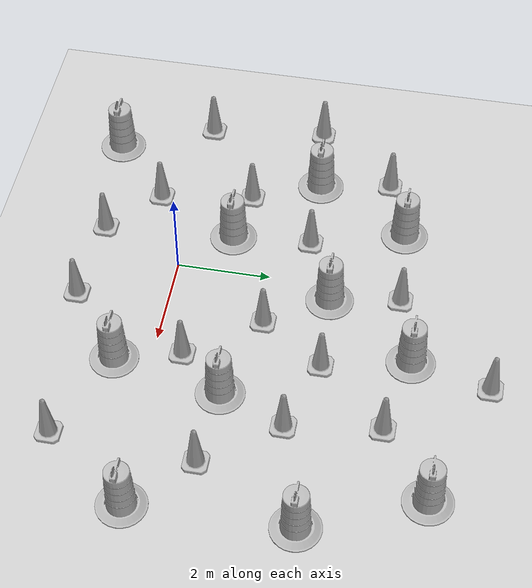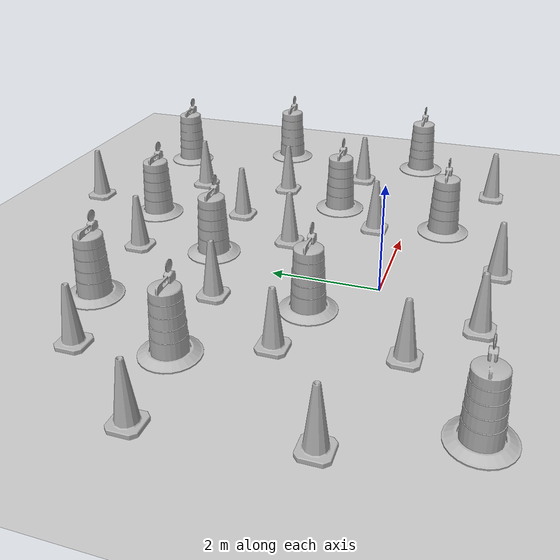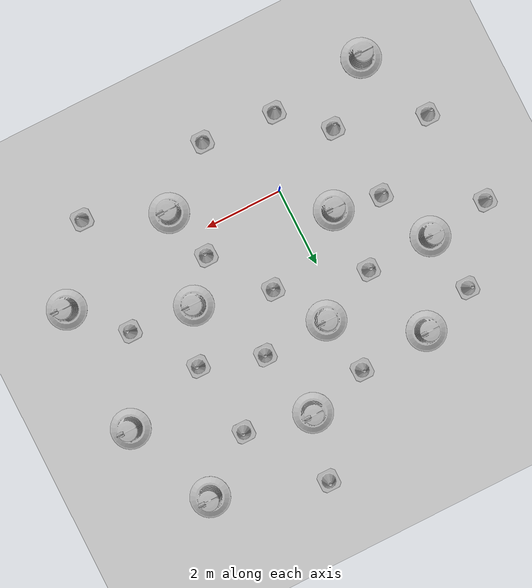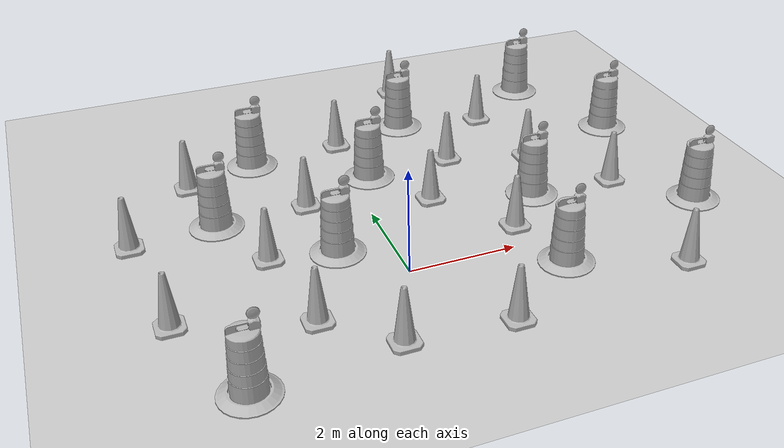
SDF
<sdf version="1.7">
 <world name="default">
  <light name="sun" type="directional">
   <pose>0 0 10 0 -0 0</pose>
   <diffuse>0.8 0.8 0.8 1</diffuse>
   <specular>0.2 0.2 0.2 1</specular>
   <attenuation>
    <range>1000</range>
    <constant>0.9</constant>
    <linear>0.01</linear>
    <quadratic>0.001</quadratic>
   </attenuation>
   <direction>-0.5 0.1 -0.9</direction>
   <spot><inner_angle>0</inner_angle><outer_angle>0</outer_angle><falloff>0</falloff></spot>
  </light>
  <model name="ground_plane">
   <static>1</static>
   <link name="link">
    <collision name="collision">
     <geometry><plane><normal>0 0 1</normal><size>100 100</size></plane></geometry>
     <surface>
      <contact><collide_bitmask>65535</collide_bitmask></contact>
      <friction><ode><mu>100</mu><mu2>50</mu2></ode></friction>
     </surface>
    </collision>
    <visual name="visual">
     <cast_shadows>0</cast_shadows>
     <geometry><plane><normal>0 0 1</normal><size>100 100</size></plane></geometry>
     <material>
      <script><uri>file://media/materials/scripts/gazebo.material</uri><name>Gazebo/Grey</name></script>
     </material>
    </visual>
   </link>
  </model>
  <gravity>0 0 -9.8</gravity>
  <magnetic_field>6e-06 2.3e-05 -4.2e-05</magnetic_field>
  <atmosphere type="adiabatic"/>
  <physics type="ode">
   <max_step_size>0.001</max_step_size>
   <real_time_factor>1</real_time_factor>
   <real_time_update_rate>1000</real_time_update_rate>
  </physics>
  <scene><ambient>0.4 0.4 0.4 1</ambient><background>0.7 0.7 0.7 1</background><shadows>1</shadows></scene>
  <audio><device>default</device></audio>
  <spherical_coordinates>
   <surface_model>EARTH_WGS84</surface_model>
   <latitude_deg>0</latitude_deg>
   <longitude_deg>0</longitude_deg>
   <elevation>0</elevation>
   <heading_deg>0</heading_deg>
  </spherical_coordinates>
  <model name="Construction Cone">
   <link name="link">
    <collision name="collision">
     <geometry>
      <mesh><scale>10 10 10</scale><uri>model://construction_cone/meshes/construction_cone.dae</uri></mesh>
     </geometry>
    </collision>
    <visual name="visual">
     <geometry>
      <mesh><scale>10 10 10</scale><uri>model://construction_cone/meshes/construction_cone.dae</uri></mesh>
     </geometry>
    </visual>
    <inertial>
     <inertia><ixx>1</ixx><ixy>0</ixy><ixz>0</ixz><iyy>1</iyy><iyz>0</iyz><izz>1</izz></inertia>
     <mass>1</mass>
    </inertial>
   </link>
   <pose>1.22897 2.08297 -0 -0 -0 -0</pose>
  </model>
  <model name="Construction Cone_clone">
   <link name="link">
    <collision name="collision">
     <geometry>
      <mesh><scale>10 10 10</scale><uri>model://construction_cone/meshes/construction_cone.dae</uri></mesh>
     </geometry>
    </collision>
    <visual name="visual">
     <geometry>
      <mesh><scale>10 10 10</scale><uri>model://construction_cone/meshes/construction_cone.dae</uri></mesh>
     </geometry>
    </visual>
    <inertial>
     <inertia><ixx>1</ixx><ixy>0</ixy><ixz>0</ixz><iyy>1</iyy><iyz>0</iyz><izz>1</izz></inertia>
     <mass>1</mass>
    </inertial>
   </link>
   <pose>2.12778 3.43331 -0 0 -0 0</pose>
  </model>
  <model name="Construction Cone_clone_0">
   <link name="link">
    <collision name="collision">
     <geometry>
      <mesh><scale>10 10 10</scale><uri>model://construction_cone/meshes/construction_cone.dae</uri></mesh>
     </geometry>
    </collision>
    <visual name="visual">
     <geometry>
      <mesh><scale>10 10 10</scale><uri>model://construction_cone/meshes/construction_cone.dae</uri></mesh>
     </geometry>
    </visual>
    <inertial>
     <inertia><ixx>1</ixx><ixy>0</ixy><ixz>0</ixz><iyy>1</iyy><iyz>0</iyz><izz>1</izz></inertia>
     <mass>1</mass>
    </inertial>
   </link>
   <pose>3.71535 2.94023 -1e-05 0 -0 0</pose>
  </model>
  <model name="Construction Cone_clone_1">
   <link name="link">
    <collision name="collision">
     <geometry>
      <mesh><scale>10 10 10</scale><uri>model://construction_cone/meshes/construction_cone.dae</uri></mesh>
     </geometry>
    </collision>
    <visual name="visual">
     <geometry>
      <mesh><scale>10 10 10</scale><uri>model://construction_cone/meshes/construction_cone.dae</uri></mesh>
     </geometry>
    </visual>
    <inertial>
     <inertia><ixx>1</ixx><ixy>0</ixy><ixz>0</ixz><iyy>1</iyy><iyz>0</iyz><izz>1</izz></inertia>
     <mass>1</mass>
    </inertial>
   </link>
   <pose>3.44447 4.87742 -1e-05 -0 -0 -0</pose>
  </model>
  <model name="Construction Cone_clone_2">
   <link name="link">
    <collision name="collision">
     <geometry>
      <mesh><scale>10 10 10</scale><uri>model://construction_cone/meshes/construction_cone.dae</uri></mesh>
     </geometry>
    </collision>
    <visual name="visual">
     <geometry>
      <mesh><scale>10 10 10</scale><uri>model://construction_cone/meshes/construction_cone.dae</uri></mesh>
     </geometry>
    </visual>
    <inertial>
     <inertia><ixx>1</ixx><ixy>0</ixy><ixz>0</ixz><iyy>1</iyy><iyz>0</iyz><izz>1</izz></inertia>
     <mass>1</mass>
    </inertial>
   </link>
   <pose>-1.87477 -0.785117 -0 0 -0 0</pose>
  </model>
  <model name="Construction Cone_clone_3">
   <link name="link">
    <collision name="collision">
     <geometry>
      <mesh><scale>10 10 10</scale><uri>model://construction_cone/meshes/construction_cone.dae</uri></mesh>
     </geometry>
    </collision>
    <visual name="visual">
     <geometry>
      <mesh><scale>10 10 10</scale><uri>model://construction_cone/meshes/construction_cone.dae</uri></mesh>
     </geometry>
    </visual>
    <inertial>
     <inertia><ixx>1</ixx><ixy>0</ixy><ixz>0</ixz><iyy>1</iyy><iyz>0</iyz><izz>1</izz></inertia>
     <mass>1</mass>
    </inertial>
   </link>
   <pose>-0.762306 -1.79241 -0 0 -0 0</pose>
  </model>
  <model name="Construction Cone_clone_4">
   <link name="link">
    <collision name="collision">
     <geometry>
      <mesh><scale>10 10 10</scale><uri>model://construction_cone/meshes/construction_cone.dae</uri></mesh>
     </geometry>
    </collision>
    <visual name="visual">
     <geometry>
      <mesh><scale>10 10 10</scale><uri>model://construction_cone/meshes/construction_cone.dae</uri></mesh>
     </geometry>
    </visual>
    <inertial>
     <inertia><ixx>1</ixx><ixy>0</ixy><ixz>0</ixz><iyy>1</iyy><iyz>0</iyz><izz>1</izz></inertia>
     <mass>1</mass>
    </inertial>
   </link>
   <pose>-2.19034 1.21403 -0 0 -0 0</pose>
  </model>
  <model name="Construction Cone_clone_5">
   <link name="link">
    <collision name="collision">
     <geometry>
      <mesh><scale>10 10 10</scale><uri>model://construction_cone/meshes/construction_cone.dae</uri></mesh>
     </geometry>
    </collision>
    <visual name="visual">
     <geometry>
      <mesh><scale>10 10 10</scale><uri>model://construction_cone/meshes/construction_cone.dae</uri></mesh>
     </geometry>
    </visual>
    <inertial>
     <inertia><ixx>1</ixx><ixy>0</ixy><ixz>0</ixz><iyy>1</iyy><iyz>0</iyz><izz>1</izz></inertia>
     <mass>1</mass>
    </inertial>
   </link>
   <pose>-1.08174 2.70843 -0 1e-06 -0 0</pose>
  </model>
  <model name="Construction Cone_clone_6">
   <link name="link">
    <collision name="collision">
     <geometry>
      <mesh><scale>10 10 10</scale><uri>model://construction_cone/meshes/construction_cone.dae</uri></mesh>
     </geometry>
    </collision>
    <visual name="visual">
     <geometry>
      <mesh><scale>10 10 10</scale><uri>model://construction_cone/meshes/construction_cone.dae</uri></mesh>
     </geometry>
    </visual>
    <inertial>
     <inertia><ixx>1</ixx><ixy>0</ixy><ixz>0</ixz><iyy>1</iyy><iyz>0</iyz><izz>1</izz></inertia>
     <mass>1</mass>
    </inertial>
   </link>
   <pose>1.14176 -1.93552 -0 0 -0 0</pose>
  </model>
  <model name="Construction Cone_clone_7">
   <link name="link">
    <collision name="collision">
     <geometry>
      <mesh><scale>10 10 10</scale><uri>model://construction_cone/meshes/construction_cone.dae</uri></mesh>
     </geometry>
    </collision>
    <visual name="visual">
     <geometry>
      <mesh><scale>10 10 10</scale><uri>model://construction_cone/meshes/construction_cone.dae</uri></mesh>
     </geometry>
    </visual>
    <inertial>
     <inertia><ixx>1</ixx><ixy>0</ixy><ixz>0</ixz><iyy>1</iyy><iyz>0</iyz><izz>1</izz></inertia>
     <mass>1</mass>
    </inertial>
   </link>
   <pose>2.31937 0.601422 0 -0 -0 -0</pose>
  </model>
  <model name="Construction Cone_clone_8">
   <link name="link">
    <collision name="collision">
     <geometry>
      <mesh><scale>10 10 10</scale><uri>model://construction_cone/meshes/construction_cone.dae</uri></mesh>
     </geometry>
    </collision>
    <visual name="visual">
     <geometry>
      <mesh><scale>10 10 10</scale><uri>model://construction_cone/meshes/construction_cone.dae</uri></mesh>
     </geometry>
    </visual>
    <inertial>
     <inertia><ixx>1</ixx><ixy>0</ixy><ixz>0</ixz><iyy>1</iyy><iyz>0</iyz><izz>1</izz></inertia>
     <mass>1</mass>
    </inertial>
   </link>
   <pose>4.81727 1.42038 -0 0 -0 0</pose>
  </model>
  <model name="Construction Cone_clone_9">
   <link name="link">
    <collision name="collision">
     <geometry>
      <mesh><scale>10 10 10</scale><uri>model://construction_cone/meshes/construction_cone.dae</uri></mesh>
     </geometry>
    </collision>
    <visual name="visual">
     <geometry>
      <mesh><scale>10 10 10</scale><uri>model://construction_cone/meshes/construction_cone.dae</uri></mesh>
     </geometry>
    </visual>
    <inertial>
     <inertia><ixx>1</ixx><ixy>0</ixy><ixz>0</ixz><iyy>1</iyy><iyz>0</iyz><izz>1</izz></inertia>
     <mass>1</mass>
    </inertial>
   </link>
   <pose>4.64472 -1.56597 1e-06 -3e-06 1e-06 0</pose>
  </model>
  <model name="Construction Cone_clone_10">
   <link name="link">
    <collision name="collision">
     <geometry>
      <mesh><scale>10 10 10</scale><uri>model://construction_cone/meshes/construction_cone.dae</uri></mesh>
     </geometry>
    </collision>
    <visual name="visual">
     <geometry>
      <mesh><scale>10 10 10</scale><uri>model://construction_cone/meshes/construction_cone.dae</uri></mesh>
     </geometry>
    </visual>
    <inertial>
     <inertia><ixx>1</ixx><ixy>0</ixy><ixz>0</ixz><iyy>1</iyy><iyz>0</iyz><izz>1</izz></inertia>
     <mass>1</mass>
    </inertial>
   </link>
   <pose>0.171995 4.82629 -1e-06 3e-06 -1e-06 0</pose>
  </model>
  <model name="Construction Cone_clone_11">
   <link name="link">
    <collision name="collision">
     <geometry>
      <mesh><scale>10 10 10</scale><uri>model://construction_cone/meshes/construction_cone.dae</uri></mesh>
     </geometry>
    </collision>
    <visual name="visual">
     <geometry>
      <mesh><scale>10 10 10</scale><uri>model://construction_cone/meshes/construction_cone.dae</uri></mesh>
     </geometry>
    </visual>
    <inertial>
     <inertia><ixx>1</ixx><ixy>0</ixy><ixz>0</ixz><iyy>1</iyy><iyz>0</iyz><izz>1</izz></inertia>
     <mass>1</mass>
    </inertial>
   </link>
   <pose>2.12292 6.87969 -0 0 -0 0</pose>
  </model>
  <model name="Construction Cone_clone_12">
   <link name="link">
    <collision name="collision">
     <geometry>
      <mesh><scale>10 10 10</scale><uri>model://construction_cone/meshes/construction_cone.dae</uri></mesh>
     </geometry>
    </collision>
    <visual name="visual">
     <geometry>
      <mesh><scale>10 10 10</scale><uri>model://construction_cone/meshes/construction_cone.dae</uri></mesh>
     </geometry>
    </visual>
    <inertial>
     <inertia><ixx>1</ixx><ixy>0</ixy><ixz>0</ixz><iyy>1</iyy><iyz>0</iyz><izz>1</izz></inertia>
     <mass>1</mass>
    </inertial>
   </link>
   <pose>-3.05405 4.20277 -0 0 -1e-06 0</pose>
  </model>
  <model name="Construction Cone_clone_13">
   <link name="link">
    <collision name="collision">
     <geometry>
      <mesh><scale>10 10 10</scale><uri>model://construction_cone/meshes/construction_cone.dae</uri></mesh>
     </geometry>
    </collision>
    <visual name="visual">
     <geometry>
      <mesh><scale>10 10 10</scale><uri>model://construction_cone/meshes/construction_cone.dae</uri></mesh>
     </geometry>
    </visual>
    <inertial>
     <inertia><ixx>1</ixx><ixy>0</ixy><ixz>0</ixz><iyy>1</iyy><iyz>0</iyz><izz>1</izz></inertia>
     <mass>1</mass>
    </inertial>
   </link>
   <pose>-4.10738 -0.048019 -0 0 -0 0</pose>
  </model>
  <model name="Construction Cone_clone_14">
   <link name="link">
    <collision name="collision">
     <geometry>
      <mesh><scale>10 10 10</scale><uri>model://construction_cone/meshes/construction_cone.dae</uri></mesh>
     </geometry>
    </collision>
    <visual name="visual">
     <geometry>
      <mesh><scale>10 10 10</scale><uri>model://construction_cone/meshes/construction_cone.dae</uri></mesh>
     </geometry>
    </visual>
    <inertial>
     <inertia><ixx>1</ixx><ixy>0</ixy><ixz>0</ixz><iyy>1</iyy><iyz>0</iyz><izz>1</izz></inertia>
     <mass>1</mass>
    </inertial>
   </link>
   <pose>-4.41011 2.47854 -0 0 -1e-06 0</pose>
  </model>
  <model name="Construction Barrel">
   <link name="link">
    <inertial>
     <pose>0 0 0.4 0 -0 0</pose>
     <mass>500</mass>
     <inertia><ixx>51.2096</ixx><iyy>51.2096</iyy><izz>25</izz><ixy>0</ixy><ixz>0</ixz><iyz>0</iyz></inertia>
    </inertial>
    <collision name="collision">
     <geometry><mesh><uri>model://construction_barrel/meshes/construction_barrel.dae</uri></mesh></geometry>
    </collision>
    <visual name="visual">
     <geometry><mesh><uri>model://construction_barrel/meshes/construction_barrel.dae</uri></mesh></geometry>
    </visual>
   </link>
   <pose>1.72089 5.2243 -2e-06 7e-06 -4e-06 -2e-05</pose>
  </model>
  <model name="Construction Barrel_clone">
   <link name="link">
    <inertial>
     <pose>0 0 0.4 0 -0 0</pose>
     <mass>500</mass>
     <inertia><ixx>51.2096</ixx><iyy>51.2096</iyy><izz>25</izz><ixy>0</ixy><ixz>0</ixz><iyz>0</iyz></inertia>
    </inertial>
    <collision name="collision">
     <geometry><mesh><uri>model://construction_barrel/meshes/construction_barrel.dae</uri></mesh></geometry>
    </collision>
    <visual name="visual">
     <geometry><mesh><uri>model://construction_barrel/meshes/construction_barrel.dae</uri></mesh></geometry>
    </visual>
   </link>
   <pose>4.9013 5.92661 -0 0 -0 -1.8e-05</pose>
  </model>
  <model name="Construction Barrel_clone_0">
   <link name="link">
    <inertial>
     <pose>0 0 0.4 0 -0 0</pose>
     <mass>500</mass>
     <inertia><ixx>51.2096</ixx><iyy>51.2096</iyy><izz>25</izz><ixy>0</ixy><ixz>0</ixz><iyz>0</iyz></inertia>
    </inertial>
    <collision name="collision">
     <geometry><mesh><uri>model://construction_barrel/meshes/construction_barrel.dae</uri></mesh></geometry>
    </collision>
    <visual name="visual">
     <geometry><mesh><uri>model://construction_barrel/meshes/construction_barrel.dae</uri></mesh></geometry>
    </visual>
   </link>
   <pose>5.88714 3.55536 -2e-06 2e-06 7e-06 -2.1e-05</pose>
  </model>
  <model name="Construction Barrel_clone_1">
   <link name="link">
    <inertial>
     <pose>0 0 0.4 0 -0 0</pose>
     <mass>500</mass>
     <inertia><ixx>51.2096</ixx><iyy>51.2096</iyy><izz>25</izz><ixy>0</ixy><ixz>0</ixz><iyz>0</iyz></inertia>
    </inertial>
    <collision name="collision">
     <geometry><mesh><uri>model://construction_barrel/meshes/construction_barrel.dae</uri></mesh></geometry>
    </collision>
    <visual name="visual">
     <geometry><mesh><uri>model://construction_barrel/meshes/construction_barrel.dae</uri></mesh></geometry>
    </visual>
   </link>
   <pose>2.66123 -0.747213 -1e-06 2e-06 -1e-06 -2.3e-05</pose>
  </model>
  <model name="Construction Barrel_clone_2">
   <link name="link">
    <inertial>
     <pose>0 0 0.4 0 -0 0</pose>
     <mass>500</mass>
     <inertia><ixx>51.2096</ixx><iyy>51.2096</iyy><izz>25</izz><ixy>0</ixy><ixz>0</ixz><iyz>0</iyz></inertia>
    </inertial>
    <collision name="collision">
     <geometry><mesh><uri>model://construction_barrel/meshes/construction_barrel.dae</uri></mesh></geometry>
    </collision>
    <visual name="visual">
     <geometry><mesh><uri>model://construction_barrel/meshes/construction_barrel.dae</uri></mesh></geometry>
    </visual>
   </link>
   <pose>0.404845 3.35104 0 0 0 -1.8e-05</pose>
  </model>
  <model name="Construction Barrel_clone_3">
   <link name="link">
    <inertial>
     <pose>0 0 0.4 0 -0 0</pose>
     <mass>500</mass>
     <inertia><ixx>51.2096</ixx><iyy>51.2096</iyy><izz>25</izz><ixy>0</ixy><ixz>0</ixz><iyz>0</iyz></inertia>
    </inertial>
    <collision name="collision">
     <geometry><mesh><uri>model://construction_barrel/meshes/construction_barrel.dae</uri></mesh></geometry>
    </collision>
    <visual name="visual">
     <geometry><mesh><uri>model://construction_barrel/meshes/construction_barrel.dae</uri></mesh></geometry>
    </visual>
   </link>
   <pose>3.14418 1.55769 -0 1e-06 -1e-06 -2.2e-05</pose>
  </model>
  <model name="Construction Barrel_clone_4">
   <link name="link">
    <inertial>
     <pose>0 0 0.4 0 -0 0</pose>
     <mass>500</mass>
     <inertia><ixx>51.2096</ixx><iyy>51.2096</iyy><izz>25</izz><ixy>0</ixy><ixz>0</ixz><iyz>0</iyz></inertia>
    </inertial>
    <collision name="collision">
     <geometry><mesh><uri>model://construction_barrel/meshes/construction_barrel.dae</uri></mesh></geometry>
    </collision>
    <visual name="visual">
     <geometry><mesh><uri>model://construction_barrel/meshes/construction_barrel.dae</uri></mesh></geometry>
    </visual>
   </link>
   <pose>-2.80948 2.65949 -0 3e-06 1e-06 -1.7e-05</pose>
  </model>
  <model name="Construction Barrel_clone_5">
   <link name="link">
    <inertial>
     <pose>0 0 0.4 0 -0 0</pose>
     <mass>500</mass>
     <inertia><ixx>51.2096</ixx><iyy>51.2096</iyy><izz>25</izz><ixy>0</ixy><ixz>0</ixz><iyz>0</iyz></inertia>
    </inertial>
    <collision name="collision">
     <geometry><mesh><uri>model://construction_barrel/meshes/construction_barrel.dae</uri></mesh></geometry>
    </collision>
    <visual name="visual">
     <geometry><mesh><uri>model://construction_barrel/meshes/construction_barrel.dae</uri></mesh></geometry>
    </visual>
   </link>
   <pose>-0.977053 1.01736 -1e-06 -8e-06 -2e-06 -1.5e-05</pose>
  </model>
  <model name="Construction Barrel_clone_6">
   <link name="link">
    <inertial>
     <pose>0 0 0.4 0 -0 0</pose>
     <mass>500</mass>
     <inertia><ixx>51.2096</ixx><iyy>51.2096</iyy><izz>25</izz><ixy>0</ixy><ixz>0</ixz><iyz>0</iyz></inertia>
    </inertial>
    <collision name="collision">
     <geometry><mesh><uri>model://construction_barrel/meshes/construction_barrel.dae</uri></mesh></geometry>
    </collision>
    <visual name="visual">
     <geometry><mesh><uri>model://construction_barrel/meshes/construction_barrel.dae</uri></mesh></geometry>
    </visual>
   </link>
   <pose>-1.66818 4.68922 -3e-06 -7e-06 -1.2e-05 -2.3e-05</pose>
  </model>
  <model name="Construction Barrel_clone_7">
   <link name="link">
    <inertial>
     <pose>0 0 0.4 0 -0 0</pose>
     <mass>500</mass>
     <inertia><ixx>51.2096</ixx><iyy>51.2096</iyy><izz>25</izz><ixy>0</ixy><ixz>0</ixz><iyz>0</iyz></inertia>
    </inertial>
    <collision name="collision">
     <geometry><mesh><uri>model://construction_barrel/meshes/construction_barrel.dae</uri></mesh></geometry>
    </collision>
    <visual name="visual">
     <geometry><mesh><uri>model://construction_barrel/meshes/construction_barrel.dae</uri></mesh></geometry>
    </visual>
   </link>
   <pose>5.97735 0.236077 0 1e-06 1e-06 -1.7e-05</pose>
  </model>
  <model name="Construction Barrel_clone_8">
   <link name="link">
    <inertial>
     <pose>0 0 0.4 0 -0 0</pose>
     <mass>500</mass>
     <inertia><ixx>51.2096</ixx><iyy>51.2096</iyy><izz>25</izz><ixy>0</ixy><ixz>0</ixz><iyz>0</iyz></inertia>
    </inertial>
    <collision name="collision">
     <geometry><mesh><uri>model://construction_barrel/meshes/construction_barrel.dae</uri></mesh></geometry>
    </collision>
    <visual name="visual">
     <geometry><mesh><uri>model://construction_barrel/meshes/construction_barrel.dae</uri></mesh></geometry>
    </visual>
   </link>
   <pose>-3.27524 -2.02807 0 0 0 -2.1e-05</pose>
  </model>
 </world>
</sdf>
